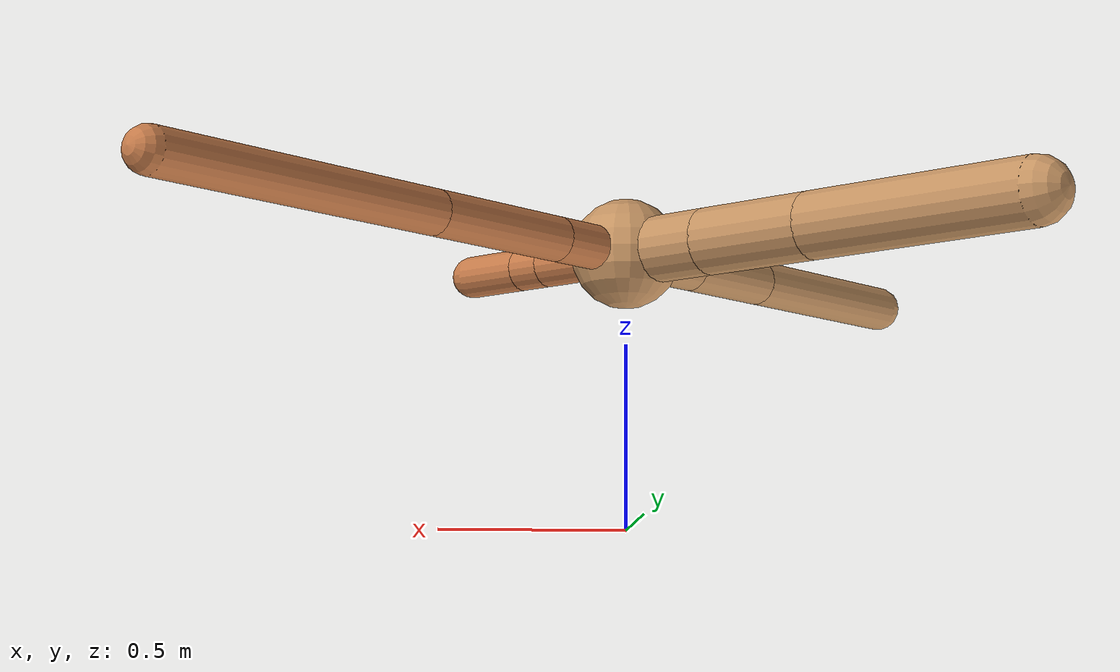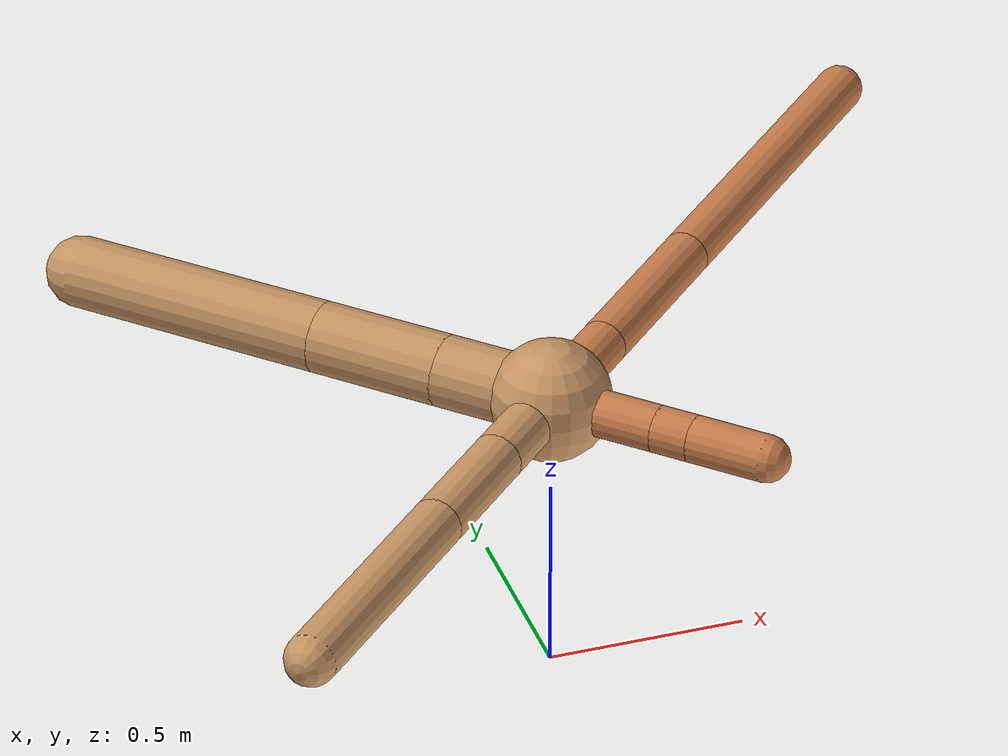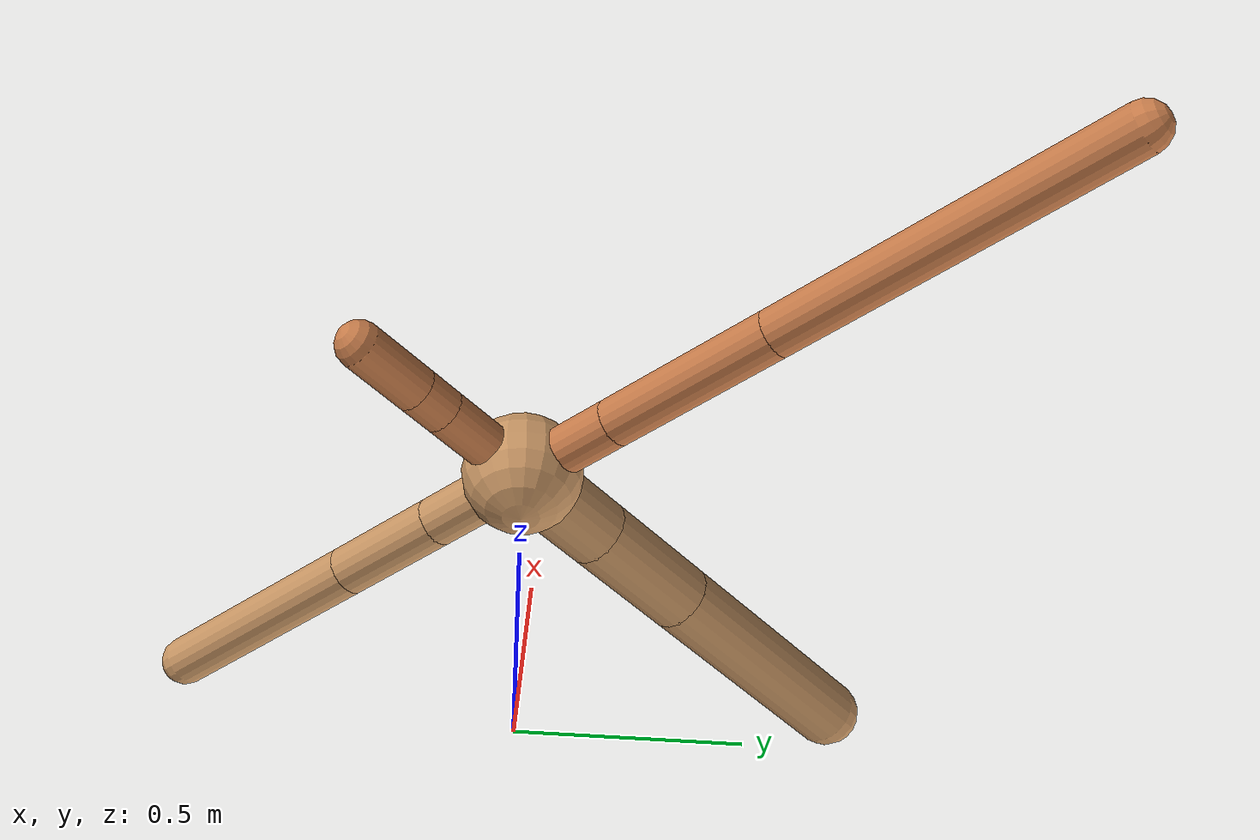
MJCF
<?xml version="1.0" ?>
<mujoco model="ant">

	<compiler angle="degree" coordinate="local" inertiafromgeom="true"/>

	<option integrator="RK4" timestep="0.01"/>

	<custom>

		<numeric data="0.0 0.0 0.55 1.0 0.0 0.0 0.0 0.0 1.0 0.0 -1.0 0.0 -1.0 0.0 1.0" name="init_qpos"/>

	</custom>

	<default>

		<joint armature="1" damping="1" limited="true"/>

		<geom conaffinity="0" condim="3" density="5.0" friction="1.5 0.1 0.1" margin="0.01" rgba="0.8 0.6 0.4 1"/>

	</default>

	<worldbody>

		<body name="torso" pos="0 0 0.75">

			<geom name="torso_geom" pos="0 0 0" size="0.14910838433003465" type="sphere"/>

			<!--joint armature="0" damping="0" limited="false" margin="0.01" name="root" pos="0 0 0" type="free"/-->

			<body name="front_left_leg" pos="0 0 0">

				<geom fromto="0 0 0 0.2 0.2 0" name="aux_1_geom" size="0.060338829581184854" type="capsule" rgba=".8 .5 .3 1"/>

				<body name="aux_1" pos="0.2 0.2 0">

					<joint axis="0 0 1" name="hip_1" pos="0.0 0.0 0.0" range="-40 40" type="hinge"/>

					<geom fromto="0 0 0 0.3270933413424307 0.3270933413424307 0" name="left_leg_geom" size="0.060338829581184854" type="capsule" rgba=".8 .5 .3 1"/>

					<body pos="0.3270933413424307 0.3270933413424307 0" name="front_left_foot">

						<joint axis="-1 1 0" name="ankle_1" pos="0.0 0.0 0.0" range="30 100" type="hinge"/>

						<geom fromto="0 0 0 0.6541866826848614 0.6541866826848614 0" name="left_ankle_geom" size="0.060338829581184854" type="capsule" rgba=".8 .5 .3 1"/>

					</body>

				</body>

			</body>

			<body name="front_right_leg" pos="0 0 0">

				<geom fromto="0 0 0 -0.2 0.2 0" name="aux_2_geom" size="0.08989972303460635" type="capsule"/>

				<body name="aux_2" pos="-0.2 0.2 0">

					<joint axis="0 0 1" name="hip_2" pos="0.0 0.0 0.0" range="-40 40" type="hinge"/>

					<geom fromto="0 0 0 -0.23716913156564345 0.23716913156564345 0" name="right_leg_geom" size="0.08989972303460635" type="capsule"/>

					<body pos="-0.23716913156564345 0.23716913156564345 0" name="front_right_foot">

						<joint axis="1 1 0" name="ankle_2" pos="0.0 0.0 0.0" range="-100 -30" type="hinge"/>

						<geom fromto="0 0 0 -0.4743382631312869 0.4743382631312869 0" name="right_ankle_geom" size="0.08989972303460635" type="capsule"/>

					</body>

				</body>

			</body>

			<body name="left_back_leg" pos="0 0 0">

				<geom fromto="0 0 0 -0.2 -0.2 0" name="aux_3_geom" size="0.06360291867205438" type="capsule"/>

				<body name="aux_3" pos="-0.2 -0.2 0">

					<joint axis="0 0 1" name="hip_3" pos="0.0 0.0 0.0" range="-40 40" type="hinge"/>

					<geom fromto="0 0 0 -0.21565007083935372 -0.21565007083935372 0" name="back_leg_geom" size="0.06360291867205438" type="capsule"/>

					<body pos="-0.21565007083935372 -0.21565007083935372 0" name="left_back_foot">

						<joint axis="-1 1 0" name="ankle_3" pos="0.0 0.0 0.0" range="-100 -30" type="hinge"/>

						<geom fromto="0 0 0 -0.43130014167870745 -0.43130014167870745 0" name="third_ankle_geom" size="0.06360291867205438" type="capsule"/>

					</body>

				</body>

			</body>

			<body name="right_back_leg" pos="0 0 0">

				<geom fromto="0 0 0 0.2 -0.2 0" name="aux_4_geom" size="0.058263895598389855" type="capsule" rgba=".8 .5 .3 1"/>

				<body name="aux_4" pos="0.2 -0.2 0">

					<joint axis="0 0 1" name="hip_4" pos="0.0 0.0 0.0" range="-40 40" type="hinge"/>

					<geom fromto="0 0 0 0.06624721251121286 -0.06624721251121286 0" name="rightback_leg_geom" size="0.058263895598389855" type="capsule" rgba=".8 .5 .3 1"/>

					<body pos="0.06624721251121286 -0.06624721251121286 0" name="right_back_foot">

						<joint axis="1 1 0" name="ankle_4" pos="0.0 0.0 0.0" range="30 100" type="hinge"/>

						<geom fromto="0 0 0 0.13249442502242573 -0.13249442502242573 0" name="fourth_ankle_geom" size="0.058263895598389855" type="capsule" rgba=".8 .5 .3 1"/>

					</body>

				</body>

			</body>

		</body>

	</worldbody>

	<actuator>

		<motor ctrllimited="true" ctrlrange="-1.0 1.0" joint="hip_4" gear="150"/>

		<motor ctrllimited="true" ctrlrange="-1.0 1.0" joint="ankle_4" gear="150"/>

		<motor ctrllimited="true" ctrlrange="-1.0 1.0" joint="hip_1" gear="150"/>

		<motor ctrllimited="true" ctrlrange="-1.0 1.0" joint="ankle_1" gear="150"/>

		<motor ctrllimited="true" ctrlrange="-1.0 1.0" joint="hip_2" gear="150"/>

		<motor ctrllimited="true" ctrlrange="-1.0 1.0" joint="ankle_2" gear="150"/>

		<motor ctrllimited="true" ctrlrange="-1.0 1.0" joint="hip_3" gear="150"/>

		<motor ctrllimited="true" ctrlrange="-1.0 1.0" joint="ankle_3" gear="150"/>

	</actuator>

</mujoco>
